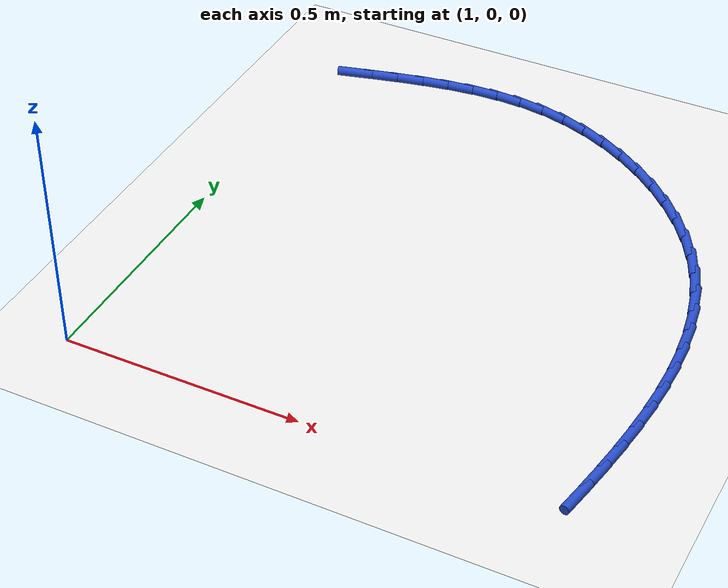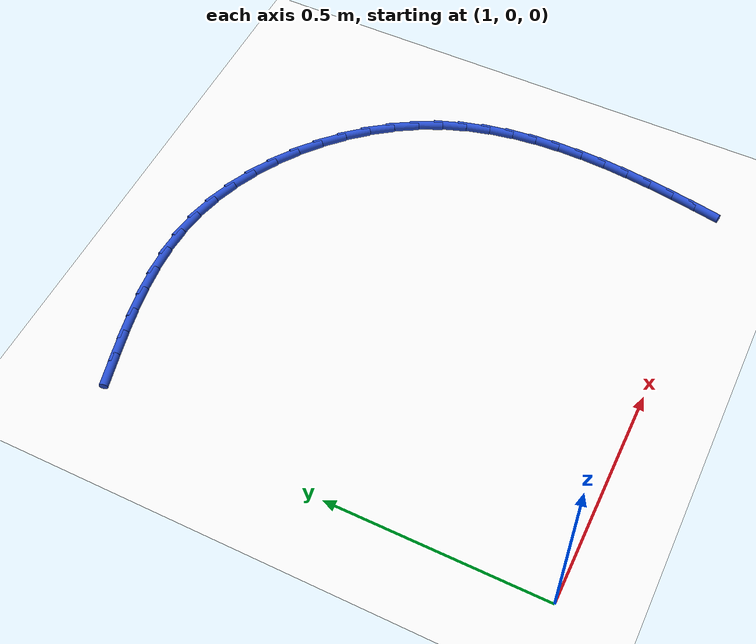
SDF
<sdf version="1.6">
 <world name="default">
  <model name="ground_plane">
   <static>1</static>
   <link name="link">
    <collision name="collision">
     <geometry><plane><normal>0 0 1</normal><size>100 100</size></plane></geometry>
     <surface><friction><ode><mu>100</mu><mu2>50</mu2></ode></friction></surface>
    </collision>
    <visual name="visual">
     <cast_shadows>0</cast_shadows>
     <geometry><plane><normal>0 0 1</normal><size>100 100</size></plane></geometry>
     <material>
      <script><uri>file://media/materials/scripts/gazebo.material</uri><name>Gazebo/WhiteGlow</name></script>
     </material>
    </visual>
   </link>
  </model>
  <model name="line">
   <link name="link_28">
    <pose>1.068282322571924 1.048574231406934 0.01 0 1.57 0.24945459636507153</pose>
    <collision name="collision">
     <geometry><cylinder><radius>0.01</radius><length>0.08</length></cylinder></geometry>
    </collision>
    <visual name="visual">
     <material>
      <script><name>Gazebo/Blue</name><uri>file://media/materials/scripts/gazebo.material</uri></script>
     </material>
     <geometry><cylinder><radius>0.01</radius><length>0.08</length></cylinder></geometry>
    </visual>
   </link>
   <link name="link_29">
    <pose>1.1251778060970432 1.0630689838690566 0.01 0 1.57 0.23305480161748435</pose>
    <collision name="collision">
     <geometry><cylinder><radius>0.01</radius><length>0.08</length></cylinder></geometry>
    </collision>
    <visual name="visual">
     <material>
      <script><name>Gazebo/Blue</name><uri>file://media/materials/scripts/gazebo.material</uri></script>
     </material>
     <geometry><cylinder><radius>0.01</radius><length>0.08</length></cylinder></geometry>
    </visual>
   </link>
   <link name="link_30">
    <pose>1.182432182753354 1.076659338122875 0.01 0 1.57 0.20343479084473784</pose>
    <collision name="collision">
     <geometry><cylinder><radius>0.01</radius><length>0.08</length></cylinder></geometry>
    </collision>
    <visual name="visual">
     <material>
      <script><name>Gazebo/Blue</name><uri>file://media/materials/scripts/gazebo.material</uri></script>
     </material>
     <geometry><cylinder><radius>0.01</radius><length>0.08</length></cylinder></geometry>
    </visual>
   </link>
   <link name="link_31">
    <pose>1.2399299800987795 1.0885204708917704 0.01 0 1.57 0.16012644254394584</pose>
    <collision name="collision">
     <geometry><cylinder><radius>0.01</radius><length>0.08</length></cylinder></geometry>
    </collision>
    <visual name="visual">
     <material>
      <script><name>Gazebo/Blue</name><uri>file://media/materials/scripts/gazebo.material</uri></script>
     </material>
     <geometry><cylinder><radius>0.01</radius><length>0.08</length></cylinder></geometry>
    </visual>
   </link>
   <link name="link_32">
    <pose>1.2975557256912449 1.0978275588991235 0.01 0 1.57 0.10249184409297606</pose>
    <collision name="collision">
     <geometry><cylinder><radius>0.01</radius><length>0.08</length></cylinder></geometry>
    </collision>
    <visual name="visual">
     <material>
      <script><name>Gazebo/Blue</name><uri>file://media/materials/scripts/gazebo.material</uri></script>
     </material>
     <geometry><cylinder><radius>0.01</radius><length>0.08</length></cylinder></geometry>
    </visual>
   </link>
   <link name="link_33">
    <pose>1.355193947088674 1.1037557788683152 0.01 0 1.57 0.029964469537382795</pose>
    <collision name="collision">
     <geometry><cylinder><radius>0.01</radius><length>0.08</length></cylinder></geometry>
    </collision>
    <visual name="visual">
     <material>
      <script><name>Gazebo/Blue</name><uri>file://media/materials/scripts/gazebo.material</uri></script>
     </material>
     <geometry><cylinder><radius>0.01</radius><length>0.08</length></cylinder></geometry>
    </visual>
   </link>
   <link name="link_34">
    <pose>1.4127291718489896 1.1054803075227255 0.01 0 1.57 -0.05758060808185702</pose>
    <collision name="collision">
     <geometry><cylinder><radius>0.01</radius><length>0.08</length></cylinder></geometry>
    </collision>
    <visual name="visual">
     <material>
      <script><name>Gazebo/Blue</name><uri>file://media/materials/scripts/gazebo.material</uri></script>
     </material>
     <geometry><cylinder><radius>0.01</radius><length>0.08</length></cylinder></geometry>
    </visual>
   </link>
   <link name="link_35">
    <pose>1.4700459275301165 1.1021763215857363 0.01 0 1.57 -0.15910569101524857</pose>
    <collision name="collision">
     <geometry><cylinder><radius>0.01</radius><length>0.08</length></cylinder></geometry>
    </collision>
    <visual name="visual">
     <material>
      <script><name>Gazebo/Blue</name><uri>file://media/materials/scripts/gazebo.material</uri></script>
     </material>
     <geometry><cylinder><radius>0.01</radius><length>0.08</length></cylinder></geometry>
    </visual>
   </link>
   <link name="link_36">
    <pose>1.5270244761455094 1.093033430109067 0.01 0 1.57 -0.2644412871382583</pose>
    <collision name="collision">
     <geometry><cylinder><radius>0.01</radius><length>0.08</length></cylinder></geometry>
    </collision>
    <visual name="visual">
     <material>
      <script><name>Gazebo/Blue</name><uri>file://media/materials/scripts/gazebo.material</uri></script>
     </material>
     <geometry><cylinder><radius>0.01</radius><length>0.08</length></cylinder></geometry>
    </visual>
   </link>
   <link name="link_37">
    <pose>1.5833885005113526 1.077771022668994 0.01 0 1.57 -0.36294791220469796</pose>
    <collision name="collision">
     <geometry><cylinder><radius>0.01</radius><length>0.08</length></cylinder></geometry>
    </collision>
    <visual name="visual">
     <material>
      <script><name>Gazebo/Blue</name><uri>file://media/materials/scripts/gazebo.material</uri></script>
     </material>
     <geometry><cylinder><radius>0.01</radius><length>0.08</length></cylinder></geometry>
    </visual>
   </link>
   <link name="link_38">
    <pose>1.6386634732919043 1.0567791263216695 0.01 0 1.57 -0.45525399559087365</pose>
    <collision name="collision">
     <geometry><cylinder><radius>0.01</radius><length>0.08</length></cylinder></geometry>
    </collision>
    <visual name="visual">
     <material>
      <script><name>Gazebo/Blue</name><uri>file://media/materials/scripts/gazebo.material</uri></script>
     </material>
     <geometry><cylinder><radius>0.01</radius><length>0.08</length></cylinder></geometry>
    </visual>
   </link>
   <link name="link_39">
    <pose>1.6923621300646328 1.030490863634265 0.01 0 1.57 -0.5428433601376562</pose>
    <collision name="collision">
     <geometry><cylinder><radius>0.01</radius><length>0.08</length></cylinder></geometry>
    </collision>
    <visual name="visual">
     <material>
      <script><name>Gazebo/Blue</name><uri>file://media/materials/scripts/gazebo.material</uri></script>
     </material>
     <geometry><cylinder><radius>0.01</radius><length>0.08</length></cylinder></geometry>
    </visual>
   </link>
   <link name="link_40">
    <pose>1.7439972064070062 0.9993393571739522 0.01 0 1.57 -0.6272488959380308</pose>
    <collision name="collision">
     <geometry><cylinder><radius>0.01</radius><length>0.08</length></cylinder></geometry>
    </collision>
    <visual name="visual">
     <material>
      <script><name>Gazebo/Blue</name><uri>file://media/materials/scripts/gazebo.material</uri></script>
     </material>
     <geometry><cylinder><radius>0.01</radius><length>0.08</length></cylinder></geometry>
    </visual>
   </link>
   <link name="link_41">
    <pose>1.7930814378964917 0.9637577295079012 0.01 0 1.57 -0.7100082974936863</pose>
    <collision name="collision">
     <geometry><cylinder><radius>0.01</radius><length>0.08</length></cylinder></geometry>
    </collision>
    <visual name="visual">
     <material>
      <script><name>Gazebo/Blue</name><uri>file://media/materials/scripts/gazebo.material</uri></script>
     </material>
     <geometry><cylinder><radius>0.01</radius><length>0.08</length></cylinder></geometry>
    </visual>
   </link>
   <link name="link_42">
    <pose>1.8391275601105563 0.924179103203284 0.01 0 1.57 -0.7926561525084982</pose>
    <collision name="collision">
     <geometry><cylinder><radius>0.01</radius><length>0.08</length></cylinder></geometry>
    </collision>
    <visual name="visual">
     <material>
      <script><name>Gazebo/Blue</name><uri>file://media/materials/scripts/gazebo.material</uri></script>
     </material>
     <geometry><cylinder><radius>0.01</radius><length>0.08</length></cylinder></geometry>
    </visual>
   </link>
   <link name="link_43">
    <pose>1.8816483086266704 0.881036600827272 0.01 0 1.57 -0.8767335725688109</pose>
    <collision name="collision">
     <geometry><cylinder><radius>0.01</radius><length>0.08</length></cylinder></geometry>
    </collision>
    <visual name="visual">
     <material>
      <script><name>Gazebo/Blue</name><uri>file://media/materials/scripts/gazebo.material</uri></script>
     </material>
     <geometry><cylinder><radius>0.01</radius><length>0.08</length></cylinder></geometry>
    </visual>
   </link>
   <link name="link_44">
    <pose>1.9201564190222995 0.8347633449470364 0.01 0 1.57 -0.9637997416385832</pose>
    <collision name="collision">
     <geometry><cylinder><radius>0.01</radius><length>0.08</length></cylinder></geometry>
    </collision>
    <visual name="visual">
     <material>
      <script><name>Gazebo/Blue</name><uri>file://media/materials/scripts/gazebo.material</uri></script>
     </material>
     <geometry><cylinder><radius>0.01</radius><length>0.08</length></cylinder></geometry>
    </visual>
   </link>
   <link name="link_45">
    <pose>1.954164626874913 0.7857924581297482 0.01 0 1.57 -1.0554297897842946</pose>
    <collision name="collision">
     <geometry><cylinder><radius>0.01</radius><length>0.08</length></cylinder></geometry>
    </collision>
    <visual name="visual">
     <material>
      <script><name>Gazebo/Blue</name><uri>file://media/materials/scripts/gazebo.material</uri></script>
     </material>
     <geometry><cylinder><radius>0.01</radius><length>0.08</length></cylinder></geometry>
    </visual>
   </link>
   <link name="link_46">
    <pose>1.9831856677619781 0.7345570629425793 0.01 0 1.57 -1.151429972601119</pose>
    <collision name="collision">
     <geometry><cylinder><radius>0.01</radius><length>0.08</length></cylinder></geometry>
    </collision>
    <visual name="visual">
     <material>
      <script><name>Gazebo/Blue</name><uri>file://media/materials/scripts/gazebo.material</uri></script>
     </material>
     <geometry><cylinder><radius>0.01</radius><length>0.08</length></cylinder></geometry>
    </visual>
   </link>
   <link name="link_47">
    <pose>2.0068560608814825 0.6814621410087875 0.01 0 1.57 -1.2437189505175597</pose>
    <collision name="collision">
     <geometry><cylinder><radius>0.01</radius><length>0.08</length></cylinder></geometry>
    </collision>
    <visual name="visual">
     <material>
      <script><name>Gazebo/Blue</name><uri>file://media/materials/scripts/gazebo.material</uri></script>
     </material>
     <geometry><cylinder><radius>0.01</radius><length>0.08</length></cylinder></geometry>
    </visual>
   </link>
   <link name="link_48">
    <pose>2.0254086485086975 0.6267771059806735 0.01 0 1.57 -1.3285846404405535</pose>
    <collision name="collision">
     <geometry><cylinder><radius>0.01</radius><length>0.08</length></cylinder></geometry>
    </collision>
    <visual name="visual">
     <material>
      <script><name>Gazebo/Blue</name><uri>file://media/materials/scripts/gazebo.material</uri></script>
     </material>
     <geometry><cylinder><radius>0.01</radius><length>0.08</length></cylinder></geometry>
    </visual>
   </link>
   <link name="link_49">
    <pose>2.039255616763121 0.5707305995163103 0.01 0 1.57 -1.4052447380081163</pose>
    <collision name="collision">
     <geometry><cylinder><radius>0.01</radius><length>0.08</length></cylinder></geometry>
    </collision>
    <visual name="visual">
     <material>
      <script><name>Gazebo/Blue</name><uri>file://media/materials/scripts/gazebo.material</uri></script>
     </material>
     <geometry><cylinder><radius>0.01</radius><length>0.08</length></cylinder></geometry>
    </visual>
   </link>
   <link name="link_50">
    <pose>2.048809187230408 0.5135512552108994 0.01 0 1.57 -1.4734458076224233</pose>
    <collision name="collision">
     <geometry><cylinder><radius>0.01</radius><length>0.08</length></cylinder></geometry>
    </collision>
    <visual name="visual">
     <material>
      <script><name>Gazebo/Blue</name><uri>file://media/materials/scripts/gazebo.material</uri></script>
     </material>
     <geometry><cylinder><radius>0.01</radius><length>0.08</length></cylinder></geometry>
    </visual>
   </link>
   <link name="link_51">
    <pose>2.0544815814962156 0.45546770665964353 0.01 0 1.57 -1.5333143544008756</pose>
    <collision name="collision">
     <geometry><cylinder><radius>0.01</radius><length>0.08</length></cylinder></geometry>
    </collision>
    <visual name="visual">
     <material>
      <script><name>Gazebo/Blue</name><uri>file://media/materials/scripts/gazebo.material</uri></script>
     </material>
     <geometry><cylinder><radius>0.01</radius><length>0.08</length></cylinder></geometry>
    </visual>
   </link>
   <link name="link_52">
    <pose>2.056685021146202 0.3967085874577444 0.01 0 1.57 1.5563850594123931</pose>
    <collision name="collision">
     <geometry><cylinder><radius>0.01</radius><length>0.08</length></cylinder></geometry>
    </collision>
    <visual name="visual">
     <material>
      <script><name>Gazebo/Blue</name><uri>file://media/materials/scripts/gazebo.material</uri></script>
     </material>
     <geometry><cylinder><radius>0.01</radius><length>0.08</length></cylinder></geometry>
    </visual>
   </link>
   <link name="link_53">
    <pose>2.0558317277660234 0.33750253120040485 0.01 0 1.57 1.5120027001416487</pose>
    <collision name="collision">
     <geometry><cylinder><radius>0.01</radius><length>0.08</length></cylinder></geometry>
    </collision>
    <visual name="visual">
     <material>
      <script><name>Gazebo/Blue</name><uri>file://media/materials/scripts/gazebo.material</uri></script>
     </material>
     <geometry><cylinder><radius>0.01</radius><length>0.08</length></cylinder></geometry>
    </visual>
   </link>
   <link name="link_54">
    <pose>2.0523339229413358 0.2780781714828263 0.01 0 1.57 1.4746502252425517</pose>
    <collision name="collision">
     <geometry><cylinder><radius>0.01</radius><length>0.08</length></cylinder></geometry>
    </collision>
    <visual name="visual">
     <material>
      <script><name>Gazebo/Blue</name><uri>file://media/materials/scripts/gazebo.material</uri></script>
     </material>
     <geometry><cylinder><radius>0.01</radius><length>0.08</length></cylinder></geometry>
    </visual>
   </link>
   <link name="link_55">
    <pose>2.0466038282577976 0.21866414190021188 0.01 0 1.57 1.4438917254580195</pose>
    <collision name="collision">
     <geometry><cylinder><radius>0.01</radius><length>0.08</length></cylinder></geometry>
    </collision>
    <visual name="visual">
     <material>
      <script><name>Gazebo/Blue</name><uri>file://media/materials/scripts/gazebo.material</uri></script>
     </material>
     <geometry><cylinder><radius>0.01</radius><length>0.08</length></cylinder></geometry>
    </visual>
   </link>
   <link name="link_56">
    <pose>2.0390536653010645 0.15948907604776308 0.01 0 1.57 1.4193770522568578</pose>
    <collision name="collision">
     <geometry><cylinder><radius>0.01</radius><length>0.08</length></cylinder></geometry>
    </collision>
    <visual name="visual">
     <material>
      <script><name>Gazebo/Blue</name><uri>file://media/materials/scripts/gazebo.material</uri></script>
     </material>
     <geometry><cylinder><radius>0.01</radius><length>0.08</length></cylinder></geometry>
    </visual>
   </link>
   <link name="link_57">
    <pose>2.0300956556567935 0.10078160752068271 0.01 0 1.57 1.4008698358837304</pose>
    <collision name="collision">
     <geometry><cylinder><radius>0.01</radius><length>0.08</length></cylinder></geometry>
    </collision>
    <visual name="visual">
     <material>
      <script><name>Gazebo/Blue</name><uri>file://media/materials/scripts/gazebo.material</uri></script>
     </material>
     <geometry><cylinder><radius>0.01</radius><length>0.08</length></cylinder></geometry>
    </visual>
   </link>
   <link name="link_58">
    <pose>2.020142020910643 0.042770369914172435 0.01 0 1.57 1.388035738367201</pose>
    <collision name="collision">
     <geometry><cylinder><radius>0.01</radius><length>0.08</length></cylinder></geometry>
    </collision>
    <visual name="visual">
     <material>
      <script><name>Gazebo/Blue</name><uri>file://media/materials/scripts/gazebo.material</uri></script>
     </material>
     <geometry><cylinder><radius>0.01</radius><length>0.08</length></cylinder></geometry>
    </visual>
   </link>
  </model>
 </world>
</sdf>
